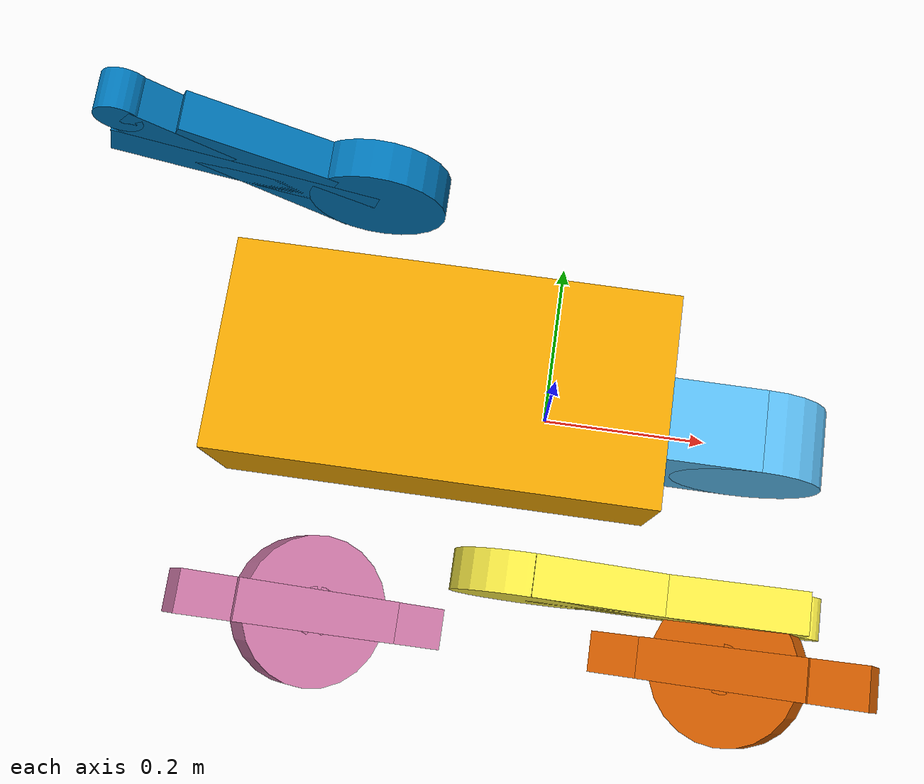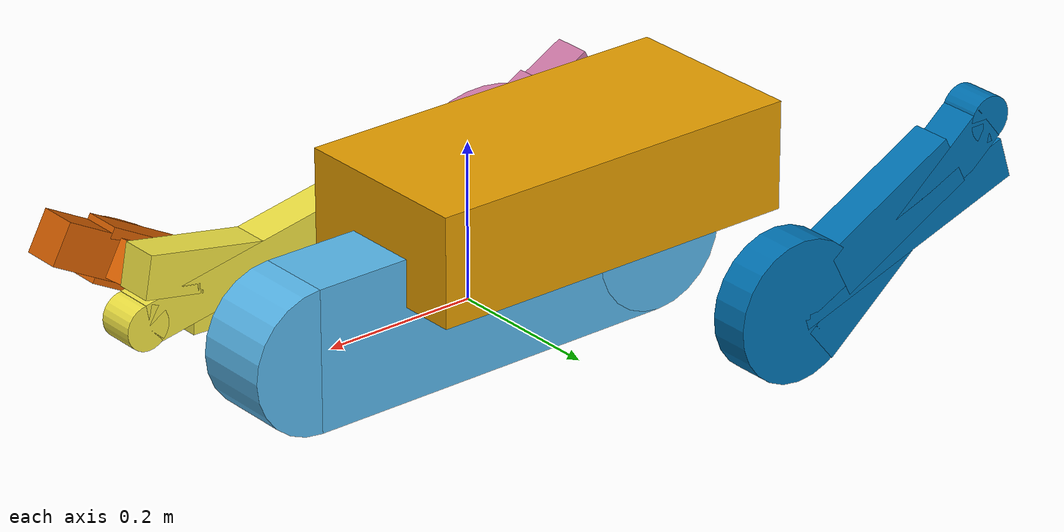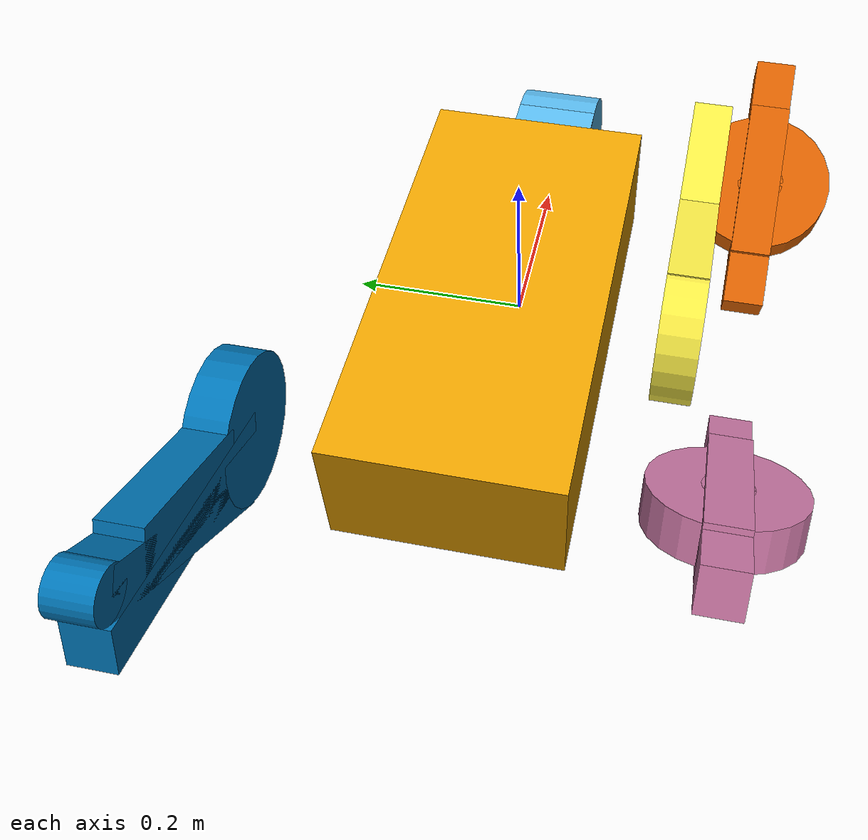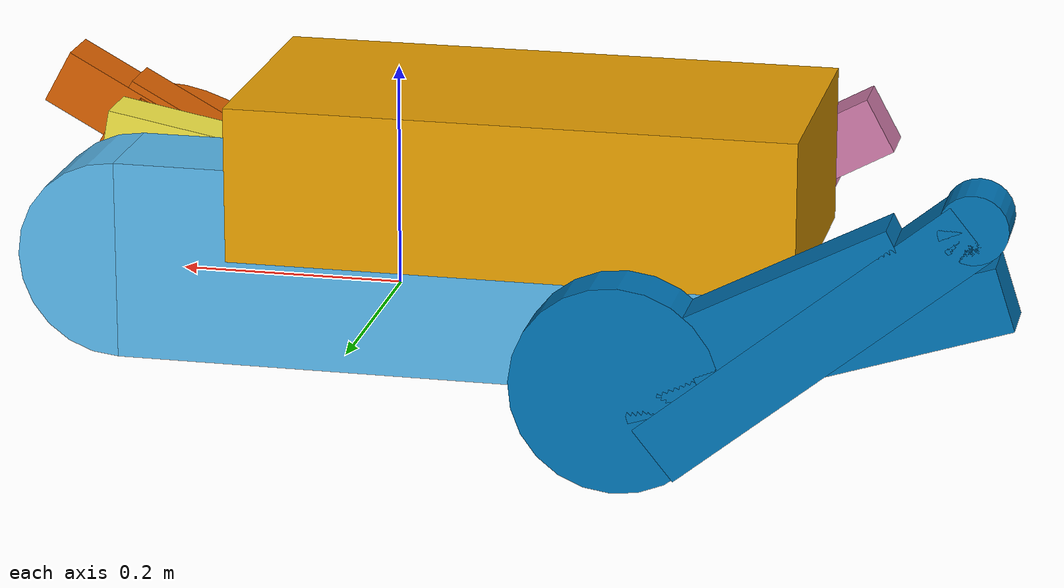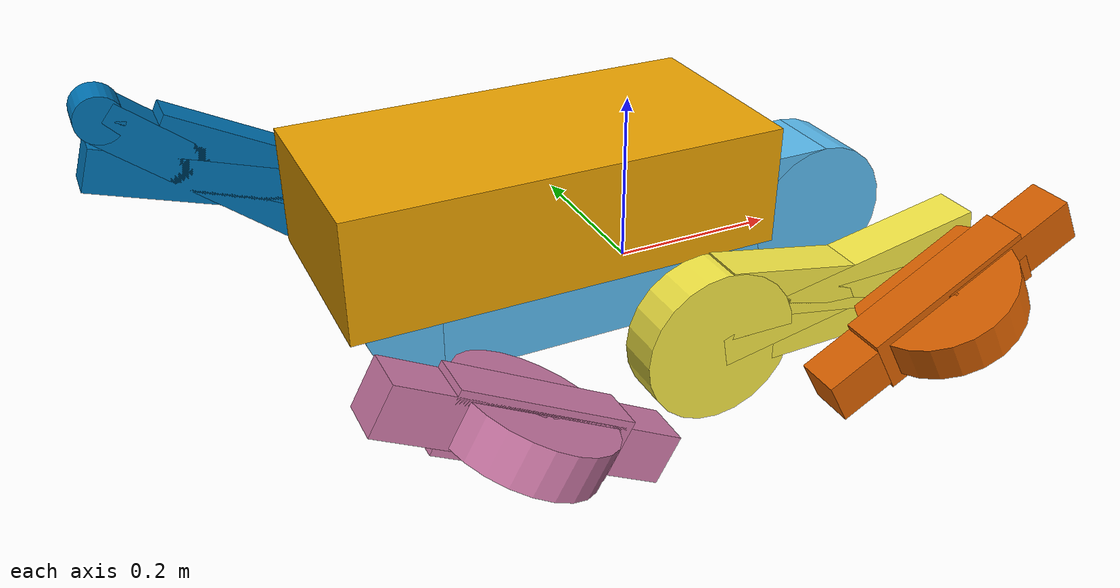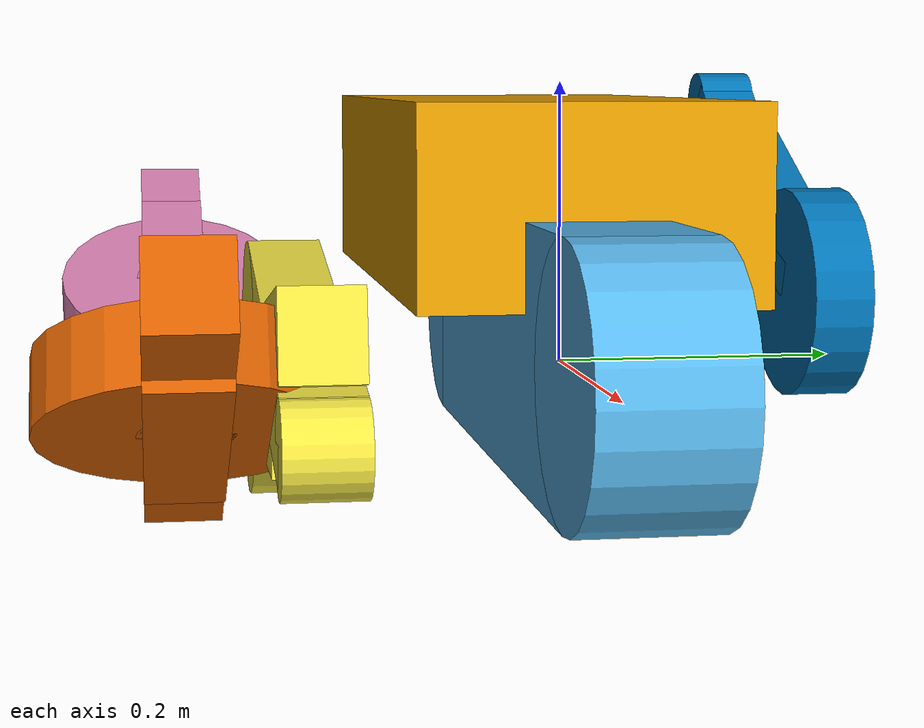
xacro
<?xml version="1.0" ?>
<robot xmlns:xacro="http://www.ros.org/wiki/xacro"  name="robot">

            <link name='base_link'>
                <origin xyz="0 0 0" rpy="0 -0 0"/>
                <collision name='base_link_collision'>
                    <origin xyz="-0.122 0 0.118" rpy="0 -0 0"/>
                    <geometry>
                        <box size="0.50017 0.24093 0.139"/>
                    </geometry>
                </collision>
                <visual name='base_link_visual'>
                    <origin xyz="-0.122 0 0.118" rpy="0 -0 0"/>
                    <geometry>
                        <box size="0.50017 0.24093 0.139"/>
                    </geometry>
                </visual>
                <self_collide>0</self_collide>
                <gravity>1</gravity>
                <kinematic>0</kinematic>
            </link>

            <link name='left_track'>
                <origin xyz="0 0.1985 0" rpy="0 -0 0"/>
                <collision name='left_track_collision'>
                    <origin xyz="0 0 0.01855" rpy="1.5708 -0 1.5708"/>
                    <geometry>
                        <box size="0.09728 0.18094 0.5"/>
                    </geometry>
                    <surface>
                        <friction>
                            <ode>
                                <mu>0.7</mu>
                                <mu2>150</mu2>
                                <fdir1>0 1 0</fdir1>
                            </ode>
                        </friction>
                    </surface>
                </collision>
                <collision name='left_track_collision_1'>
                    <origin xyz="0.25 0 0.01855" rpy="1.5708 -0 0"/>
                    <geometry>
                        <cylinder length="0.09728" radius="0.09047"/>
                    </geometry>
                    <surface>
                        <friction>
                            <ode>
                                <mu>0.7</mu>
                                <mu2>150</mu2>
                                <fdir1>0 1 0</fdir1>
                            </ode>
                        </friction>
                    </surface>
                </collision>
                <collision name='left_track_collision_2'>
                    <origin xyz="-0.25 0 0.01855" rpy="1.5708 -0 0"/>
                    <geometry>
                        <cylinder length="0.09728" radius="0.09047"/>
                    </geometry>
                    <surface>
                        <friction>
                            <ode>
                                <mu>0.7</mu>
                                <mu2>150</mu2>
                                <fdir1>0 1 0</fdir1>
                            </ode>
                        </friction>
                    </surface>
                </collision>
                <visual name='left_track_visual'>
                    <origin xyz="0 0 0.01855" rpy="1.5708 -0 1.5708"/>
                    <geometry>
                        <box size="0.09728 0.18094 0.5"/>
                    </geometry>
                </visual>
                <visual name='left_track_visual_1'>
                    <origin xyz="0.25 0 0.01855" rpy="1.5708 -0 0"/>
                    <geometry>
                        <cylinder length="0.09728" radius="0.09047"/>
                    </geometry>
                </visual>
                <visual name='left_track_visual_2'>
                    <origin xyz="-0.25 0 0.01855" rpy="1.5708 -0 0"/>
                    <geometry>
                         <cylinder length="0.09728" radius="0.09047"/>
                    </geometry>
                </visual>
                <gravity>1</gravity>
                <kinematic>0</kinematic>
            </link>
            <joint name='left_track_j' type='fixed'>
                <child link="left_track"/>
                <parent link="base_link"/>
            </joint>

            <!-- RIGHT TRACK-->

            <link name='right_track'>
                <origin xyz="0 -0.1985 0" rpy="0 -0 0"/>
                <collision name='right_track_collision'>
                    <origin xyz="0 0 0.01855" rpy="1.5708 -0 1.5708"/>
                    <geometry>
                        <box size="0.09728 0.18094 0.5"/>
                    </geometry>
                    <surface>
                        <friction>
                            <ode>
                                <mu>0.7</mu>
                                <mu2>150</mu2>
                                <fdir1>0 1 0</fdir1>
                            </ode>
                        </friction>
                    </surface>
                </collision>
                <collision name='right_track_collision_1'>
                    <origin xyz="0.25 0 0.01855" rpy="1.5708 -0 0"/>
                    <geometry>
                        <cylinder length="0.09728" radius="0.09047"/>
                    </geometry>
                    <surface>
                        <friction>
                            <ode>
                                <mu>0.7</mu>
                                <mu2>150</mu2>
                                <fdir1>0 1 0</fdir1>
                            </ode>
                        </friction>
                    </surface>
                </collision>
                <collision name='right_track_collision_2'>
                    <origin xyz="0.25 0 0.01855" rpy="1.5708 -0 0"/>
                    <geometry>
                        <cylinder length="0.09728" radius="0.09047"/>
                    </geometry>
                    <surface>
                        <friction>
                            <ode>
                                <mu>0.7</mu>
                                <mu2>150</mu2>
                                <fdir1>0 1 0</fdir1>
                            </ode>
                        </friction>
                    </surface>
                </collision>
                <visual name='right_track_visual'>
                    <origin xyz="0 0 0.01855" rpy="1.5708 -0 1.5708"/>
                    <geometry>
                        <box size="0.09728 0.18094 0.5"/>
                    </geometry>
                </visual>
                <visual name='right_track_visual_1'>
                    <origin xyz="0.25 0 0.01855" rpy="1.5708 -0 0"/>
                    <geometry>
                        <cylinder length="0.09728" radius="0.09047"/>
                    </geometry>
                </visual>
                <visual name='right_track_visual_2'>
                    <origin xyz="0.25 0 0.01855" rpy="1.5708 -0 0"/>
                    <geometry>
                        <cylinder length="0.09728" radius="0.09047"/>
                    </geometry>
                </visual>
                <gravity>1</gravity>
                <kinematic>0</kinematic>
            </link>
            <joint name='right_track_j' type='fixed'>
                <child link="right_track"/>
                <parent link="base_link"/>
            </joint>

            <!-- FRONT LEFT FLIPPER-->

            <link name='front_left_flipper'>
                <origin xyz="0.25 0.272 0.0195" rpy="0 -0.5 0"/>
                <collision name='front_left_flipper_collision_large_wheel_collision'>
                    <origin xyz="0 -0 0" rpy="1.5708 -0 0"/>
                    <geometry>
                        <cylinder length="0.04981" radius="0.089"/>
                    </geometry>
                    <surface>
                        <friction>
                            <ode>
                                <mu>0.7</mu>
                                <mu2>150</mu2>
                                <fdir1>0 1 0</fdir1>
                            </ode>
                        </friction>
                        <contact>
                            <ode/>
                        </contact>
                    </surface>
                    <max_contacts>20</max_contacts>
                </collision>
                <collision name='front_left_flipper_collision_small_wheel_collision_1'>
                    <origin xyz="0.33 -0 0" rpy="1.5708 -0 0"/>
                    <geometry>
                        <cylinder length="0.04981" radius="0.029"/>
                    </geometry>
                    <surface>
                        <friction>
                            <ode>
                                <mu>0.7</mu>
                                <mu2>150</mu2>
                                <fdir1>0 1 0</fdir1>
                            </ode>
                        </friction>
                        <contact>
                            <ode/>
                        </contact>
                    </surface>
                    <max_contacts>20</max_contacts>
                </collision>
                <collision name='front_left_flipper_collision_top_bar_collision_2'>
                    <origin xyz="0.165 -0 0.0325" rpy="0 0.184162 0"/>
                    <geometry>
                        <box size="0.33 0.04981 0.055"/>
                    </geometry>
                    <surface>
                        <friction>
                            <ode>
                                <mu>0.7</mu>
                                <mu2>150</mu2>
                                <fdir1>0 1 0</fdir1>
                            </ode>
                        </friction>
                        <contact>
                            <ode/>
                        </contact>
                    </surface>
                    <max_contacts>20</max_contacts>
                </collision>
                <collision name='front_left_flipper_collision_bottom_bar_collision_3'>
                    <origin xyz="0.165 -0 0.0325" rpy="0 -0.184162 0"/>
                    <geometry>
                        <box size="0.33 0.04981 0.055"/>
                    </geometry>
                    <surface>
                        <friction>
                            <ode>
                                <mu>0.7</mu>
                                <mu2>150</mu2>
                                <fdir1>0 1 0</fdir1>
                            </ode>
                        </friction>
                        <contact>
                            <ode/>
                        </contact>
                    </surface>
                    <max_contacts>20</max_contacts>
                </collision>
                <collision name='front_left_flipper_collision_middle_bar_collision_4'>
                    <origin xyz="0.166 -0 0.004" rpy="0 -0.02 0"/>
                    <geometry>
                        <box size="0.2 0.04981 0.07"/>
                    </geometry>
                    <surface>
                        <friction>
                            <ode>
                                <mu>0.7</mu>
                                <mu2>150</mu2>
                                <fdir1>0 1 0</fdir1>
                            </ode>
                        </friction>
                        <contact>
                            <ode/>
                        </contact>
                    </surface>
                    <max_contacts>20</max_contacts>
                </collision>
                <visual name='front_left_flipper_visual_large_wheel_visual'>
                    <origin xyz="0 -0 0" rpy="1.5708 -0 0"/>
                    <geometry>
                        <cylinder length="0.04981" radius="0.089"/>
                    </geometry>
                </visual>
                <visual name='front_left_flipper_visual_small_wheel_visual_1'>
                    <origin xyz="0.33 -0 0" rpy="1.5708 -0 0"/>
                    <geometry>
                        <cylinder length="0.04981" radius="0.029"/>
                    </geometry>
                </visual>
                <visual name='front_left_flipper_visual_top_bar_visual_2'>
                    <origin xyz="0.165 -0 0.0325" rpy="0 0.184162 0"/>
                    <geometry>
                        <box size="0.33 0.04981 0.055"/>
                    </geometry>
                </visual>
                <visual name='front_left_flipper_visual_bottom_bar_visual_3'>
                    <origin xyz="0.165 -0 0.0325" rpy="0 -0.184162 0"/>
                    <geometry>
                        <box size="0.33 0.04981 0.055"/>
                    </geometry>
                </visual>
                <visual name='front_left_flipper_visual_middle_bar_visual_4'>
                    <origin xyz="0.166 -0 0.004" rpy="0 -0.02 0"/>
                    <geometry>
                        <box size="0.2 0.04981 0.07"/>
                    </geometry>
                </visual>
                <gravity>1</gravity>
                <velocity_decay/>
                <self_collide>1</self_collide>
                <kinematic>0</kinematic>
            </link>
            <joint name='front_left_flipper_j' type='revolute'>
                <child link="front_left_flipper"/>
                <parent link="left_track"/>
                <limit effort="1000.0" lower="0.0" upper="0" velocity="0.5"/>
                 <origin xyz="0 -0.1985 0" rpy="0 -0 0"/>
                <axis xyz="0 1 0">
                    <dynamics spring_reference="0" spring_stiffness="0"/>
                </axis>
                <physics>
                    <ode implicit_spring_damper="1" cfm_damping="1">
                        <limit cfm="0" erp="0.2"/>
                    </ode>
                </physics>
            </joint>

            <!-- REAR LEFT FLIPPER-->

            <link name='rear_left_flipper'>
                <origin xyz="-0.25 0.272 0.0195" rpy="3.14159 -0.5 3.14159"/>
                <collision name='rear_left_flipper_collision_large_wheel_collision'>
                    <origin xyz="0 -0 0" rpy="1.5708 -0 0"/>
                    <geometry>
                        <cylinder length="0.04981" radius="0.089"/>
                    </geometry>
                    <surface>
                        <friction>
                            <ode>
                                <mu>0.7</mu>
                                <mu2>150</mu2>
                                <fdir1>0 1 0</fdir1>
                            </ode>
                        </friction>
                        <contact>
                            <ode/>
                        </contact>
                    </surface>
                    <max_contacts>20</max_contacts>
                </collision>
                <collision name='rear_left_flipper_collision_small_wheel_collision_1'>
                    <origin xyz="0.33 -0 0" rpy="1.5708 -0 0"/>
                    <geometry>
                        <cylinder length="0.04981" radius="0.029"/>
                    </geometry>
                    <surface>
                        <friction>
                            <ode>
                                <mu>0.7</mu>
                                <mu2>150</mu2>
                                <fdir1>0 1 0</fdir1>
                            </ode>
                        </friction>
                        <contact>
                            <ode/>
                        </contact>
                    </surface>
                    <max_contacts>20</max_contacts>
                </collision>
                <collision name='rear_left_flipper_collision_top_bar_collision_2'>
                    <origin xyz="0.165 -0 0.0325" rpy="0 0.184162 0"/>
                    <geometry>
                        <box size="0.33 0.04981 0.055"/>
                    </geometry>
                    <surface>
                        <friction>
                            <ode>
                                <mu>0.7</mu>
                                <mu2>150</mu2>
                                <fdir1>0 1 0</fdir1>
                            </ode>
                        </friction>
                        <contact>
                            <ode/>
                        </contact>
                    </surface>
                    <max_contacts>20</max_contacts>
                </collision>
                <collision name='rear_left_flipper_collision_bottom_bar_collision_3'>
                    <origin xyz="0.165 -0 0.0325" rpy="0 0.184162 0"/>
                    <geometry>
                        <box size="0.33 0.04981 0.055"/>
                    </geometry>
                    <surface>
                        <friction>
                            <ode>
                                <mu>0.7</mu>
                                <mu2>150</mu2>
                                <fdir1>0 1 0</fdir1>
                            </ode>
                        </friction>
                        <contact>
                            <ode/>
                        </contact>
                    </surface>
                    <max_contacts>20</max_contacts>
                </collision>
                <collision name='rear_left_flipper_collision_middle_bar_collision_4'>
                    <origin xyz="0.166 -0 0.004" rpy="0 -0.02 0"/>
                    <geometry>
                        <box size="0.2 0.04981 0.07"/>
                    </geometry>
                    <surface>
                        <friction>
                            <ode>
                                <mu>0.7</mu>
                                <mu2>150</mu2>
                                <fdir1>0 1 0</fdir1>
                            </ode>
                        </friction>
                        <contact>
                            <ode/>
                        </contact>
                    </surface>
                    <max_contacts>20</max_contacts>
                </collision>
                <visual name='rear_left_flipper_visual_large_wheel_visual'>
                    <origin xyz="0 -0 0" rpy="1.5708 -0 0"/>
                    <geometry>
                        <cylinder length="0.04981" radius="0.089"/>
                    </geometry>
                </visual>
                <visual name='rear_left_flipper_visual_small_wheel_visual_1'>
                    <origin xyz="0.33 -0 0" rpy="1.5708 -0 0"/>
                    <geometry>
                        <cylinder length="0.04981" radius="0.029"/>
                    </geometry>
                </visual>
                <visual name='rear_left_flipper_visual_top_bar_visual_2'>
                    <origin xyz="0.165 -0 0.0325" rpy="0 0.184162 0"/>
                    <geometry>
                        <box size="0.33 0.04981 0.055"/>
                    </geometry>
                </visual>
                <visual name='rear_left_flipper_visual_bottom_bar_visual_3'>
                    <origin xyz="0.165 -0 0.0325" rpy="0 -0.184162 0"/>
                    <geometry>
                         <box size="0.33 0.04981 0.055"/>
                    </geometry>
                </visual>
                <visual name='rear_left_flipper_visual_middle_bar_visual_4'>
                    <origin xyz="0.166 -0 0.004" rpy="0 -0.02 0"/>
                    <geometry>
                        <box size="0.2 0.04981 0.07"/>
                    </geometry>
                </visual>
                <gravity>1</gravity>
                <velocity_decay/>
                <self_collide>1</self_collide>
                <kinematic>0</kinematic>
            </link>
            <joint name='rear_left_flipper_j' type='revolute'>
                <child link="rear_left_flipper"/>
                <parent link="left_track"/>
                <origin xyz="-0.25 0.272 0.0195" rpy="3.14159 -0.5 3.14159"/>
                <limit effort="1000.0" lower="0.0" upper="0" velocity="0.5"/>
                <axis xyz = "0 1 0">
                    <dynamics>
                        <spring_reference>0</spring_reference>
                        <spring_stiffness>0</spring_stiffness>
                    </dynamics>
                </axis>
                <physics>
                    <ode>
                        <implicit_spring_damper>1</implicit_spring_damper>
                        <cfm_damping>1</cfm_damping>
                        <limit>
                            <cfm>0</cfm>
                            <erp>0.2</erp>
                        </limit>
                    </ode>
                </physics>
            </joint>

            <!-- FRONT RIGHT FLIPPER -->

            <link name='front_right_flipper'>
            <origin xyz="0.25 -0.272 0.0195" rpy="3.14159 0.5 3.14159"/>
                <collision name='front_right_flipper_collision_large_wheel_collision'>
                    <pose frame=''>0 0 0 1.5708 -0 0</pose>
                    <geometry>
                        <cylinder length="0.04981" radius="0.089"/>
                    </geometry>
                    <surface>
                        <friction>
                            <ode>
                                <mu>0.7</mu>
                                <mu2>150</mu2>
                                <fdir1>0 1 0</fdir1>
                            </ode>
                        </friction>
                        <contact>
                            <ode/>
                        </contact>
                    </surface>
                    <max_contacts>20</max_contacts>
                </collision>
                <collision name='front_right_flipper_collision_small_wheel_collision_1'>
                    <pose frame=''>-0.33 0 0 1.5708 -0 0</pose>
                    <geometry>
                        <cylinder length="0.04981" radius="0.029"/>
                    </geometry>
                    <surface>
                        <friction>
                            <ode>
                                <mu>0.7</mu>
                                <mu2>150</mu2>
                                <fdir1>0 1 0</fdir1>
                            </ode>
                        </friction>
                        <contact>
                            <ode/>
                        </contact>
                    </surface>
                    <max_contacts>20</max_contacts>
                </collision>
                <collision name='front_right_flipper_collision_top_bar_collision_2'>
                    <pose frame=''>-0.165 0 0.0325 0 0.184162 -3.14159</pose>
                    <geometry>
                        <box size="0.33 0.04981 0.055"/>
                    </geometry>
                    <surface>
                        <friction>
                            <ode>
                                <mu>0.7</mu>
                                <mu2>150</mu2>
                                <fdir1>0 1 0</fdir1>
                            </ode>
                        </friction>
                        <contact>
                            <ode/>
                        </contact>
                    </surface>
                    <max_contacts>20</max_contacts>
                </collision>
                <collision name='front_right_flipper_collision_bottom_bar_collision_3'>
                    <pose frame=''>-0.165 0 -0.0325 0 -0.184162 -3.14159</pose>
                    <geometry>
                        <box size="0.33 0.04981 0.055"/>
                    </geometry>
                    <surface>
                        <friction>
                            <ode>
                                <mu>0.7</mu>
                                <mu2>150</mu2>
                                <fdir1>0 1 0</fdir1>
                            </ode>
                        </friction>
                        <contact>
                            <ode/>
                        </contact>
                    </surface>
                    <max_contacts>20</max_contacts>
                </collision>
                <collision name='front_right_flipper_collision_middle_bar_collision_4'>
                    <pose frame=''>-0.166 0 0.004 -0 -0.02 -3.14159</pose>
                    <geometry>
                        <box size="0.2 0.04981 0.07"/>
                    </geometry>
                    <surface>
                        <friction>
                            <ode>
                                <mu>0.7</mu>
                                <mu2>150</mu2>
                                <fdir1>0 1 0</fdir1>
                            </ode>
                        </friction>
                        <contact>
                            <ode/>
                        </contact>
                    </surface>
                    <max_contacts>20</max_contacts>
                </collision>
                <visual name='front_right_flipper_visual_large_wheel_visual'>
                    <pose frame=''>0 0 0 1.5708 -0 0</pose>
                    <geometry>
                        <cylinder length="0.04981" radius="0.089"/>
                    </geometry>
                </visual>
                <visual name='front_right_flipper_visual_small_wheel_visual_1'>
                    <pose frame=''>-0.33 0 0 1.5708 -0 0</pose>
                    <geometry>
                        <cylinder length="0.04981" radius="0.029"/>
                    </geometry>
                </visual>
                <visual name='front_right_flipper_visual_top_bar_visual_2'>
                    <pose frame=''>-0.165 0 0.0325 0 0.184162 -3.14159</pose>
                    <geometry>
                       <box size="0.33 0.04981 0.055"/>
                    </geometry>
                </visual>
                <visual name='front_right_flipper_visual_bottom_bar_visual_3'>
                    <pose frame=''>-0.165 0 -0.0325 0 -0.184162 -3.14159</pose>
                    <geometry>
                        <box size="0.33 0.04981 0.055"/>
                    </geometry>
                </visual>
                <visual name='front_right_flipper_visual_middle_bar_visual_4'>
                    <pose frame=''>-0.166 0 0.004 -0 -0.02 -3.14159</pose>
                    <geometry>
                        <box size="0.2 0.04981 0.07"/>
                    </geometry>
                </visual>
                <gravity>1</gravity>
                <velocity_decay/>
                <self_collide>1</self_collide>
                <kinematic>0</kinematic>
            </link>
            <joint name='front_right_flipper_j' type='revolute'>
                <child link="front_right_flipper"/>
                <parent link="right_track"/>
                <limit effort="1000.0" lower="0.0" upper="0" velocity="0.5"/>
                <origin xyz="0.25 -0.272 0.0195" rpy="3.14159 0.5 3.14159"/>
                <axis xyz="0 1 0">
                    <dynamics>
                        <spring_reference>0</spring_reference>
                        <spring_stiffness>0</spring_stiffness>
                    </dynamics>
                </axis>
                <physics>
                    <ode>
                        <implicit_spring_damper>1</implicit_spring_damper>
                        <cfm_damping>1</cfm_damping>
                        <limit>
                            <cfm>0</cfm>
                            <erp>0.2</erp>
                        </limit>
                    </ode>
                </physics>
            </joint>

            <!--REAR_RIGHT_FLIPPER-->

            <link name='rear_right_flipper'>
                <origin xyz="-0.25 -0.272 0.0195" rpy="0 0.5 0"/>
                <collision name='rear_right_flipper_collision_large_wheel_collision'>
                    <pose frame=''>0 0 0 1.5708 -0 0</pose>
                    <geometry>
                        <cylinder length="0.04981" radius="0.089"/>
                    </geometry>
                    <surface>
                        <friction>
                            <ode>
                                <mu>0.7</mu>
                                <mu2>150</mu2>
                                <fdir1>0 1 0</fdir1>
                            </ode>
                        </friction>
                        <contact>
                            <ode/>
                        </contact>
                    </surface>
                    <max_contacts>20</max_contacts>
                </collision>
                <collision name='rear_right_flipper_collision_small_wheel_collision_1'>
                    <pose frame=''>-0.33 0 0 1.5708 -0 0</pose>
                    <geometry>
                        <cylinder length="0.04981" radius="0.029"/>
                    </geometry>
                    <surface>
                        <friction>
                            <ode>
                                <mu>0.7</mu>
                                <mu2>150</mu2>
                                <fdir1>0 1 0</fdir1>
                            </ode>
                        </friction>
                        <contact>
                            <ode/>
                        </contact>
                    </surface>
                    <max_contacts>20</max_contacts>
                </collision>
                <collision name='rear_right_flipper_collision_top_bar_collision_2'>
                    <pose frame=''>-0.165 0 0.0325 0 0.184162 -3.14159</pose>
                    <geometry>
                        <box size="0.33 0.04981 0.055"/>
                    </geometry>
                    <surface>
                        <friction>
                            <ode>
                                <mu>0.7</mu>
                                <mu2>150</mu2>
                                <fdir1>0 1 0</fdir1>
                            </ode>
                        </friction>
                        <contact>
                            <ode/>
                        </contact>
                    </surface>
                    <max_contacts>20</max_contacts>
                </collision>
                <collision name='rear_right_flipper_collision_bottom_bar_collision_3'>
                    <pose frame=''>-0.165 0 -0.0325 0 -0.184162 -3.14159</pose>
                    <geometry>
                        <box size="0.33 0.04981 0.055"/>
                    </geometry>
                    <surface>
                        <friction>
                            <ode>
                                <mu>0.7</mu>
                                <mu2>150</mu2>
                                <fdir1>0 1 0</fdir1>
                            </ode>
                        </friction>
                        <contact>
                            <ode/>
                        </contact>
                    </surface>
                    <max_contacts>20</max_contacts>
                </collision>
                <collision name='rear_right_flipper_collision_middle_bar_collision_4'>
                    <pose frame=''>-0.166 0 0.004 -0 -0.02 -3.14159</pose>
                    <geometry>
                        <box size="0.2 0.04981 0.07"/>
                    </geometry>
                    <surface>
                        <friction>
                            <ode>
                                <mu>0.7</mu>
                                <mu2>150</mu2>
                                <fdir1>0 1 0</fdir1>
                            </ode>
                        </friction>
                        <contact>
                            <ode/>
                        </contact>
                    </surface>
                    <max_contacts>20</max_contacts>
                </collision>

                <visual name='rear_right_flipper_visual_large_wheel_visual'>
                    <pose frame=''>0 0 0 1.5708 -0 0</pose>
                    <geometry>
                        <cylinder length="0.04981" radius="0.089"/>
                    </geometry>
                </visual>
                <visual name='rear_right_flipper_visual_small_wheel_visual_1'>
                    <pose frame=''>-0.33 0 0 1.5708 -0 0</pose>
                    <geometry>
                       <cylinder length="0.04981" radius="0.029"/>
                    </geometry>
                </visual>
                <visual name='rear_right_flipper_visual_top_bar_visual_2'>
                    <pose frame=''>-0.165 0 0.0325 0 0.184162 -3.14159</pose>
                    <geometry>
                        <box size="0.33 0.04981 0.055"/>
                    </geometry>
                </visual>
                <visual name='rear_right_flipper_visual_bottom_bar_visual_3'>
                    <pose frame=''>-0.165 0 -0.0325 0 -0.184162 -3.14159</pose>
                    <geometry>
                        <box size="0.33 0.04981 0.055"/>
                    </geometry>
                </visual>
                <visual name='rear_right_flipper_visual_middle_bar_visual_4'>
                    <pose frame=''>-0.166 0 0.004 -0 -0.02 -3.14159</pose>
                    <geometry>
                        <box size="0.2 0.04981 0.07"/>
                    </geometry>
                </visual>
                <gravity>1</gravity>
                <velocity_decay/>
                <self_collide>1</self_collide>
                <kinematic>0</kinematic>
            </link>
            <joint name='rear_right_flipper_j' type='revolute'>
                <child link="rear_right_flipper"/>
                <parent link="right_track"/>
                <limit effort="1000.0" lower="0.0" upper="0" velocity="0.5"/>
                <origin xyz="-0.25 -0.272 0.0195" rpy="0 0.5 0"/>
                <axis xyz="0 1 0">
                    <limit>
                        <lower>0</lower>
                        <upper>0</upper>
                    </limit>
                    <dynamics>
                        <spring_reference>0</spring_reference>
                        <spring_stiffness>0</spring_stiffness>
                    </dynamics>
                </axis>
                <physics>
                    <ode>
                        <implicit_spring_damper>1</implicit_spring_damper>
                        <cfm_damping>1</cfm_damping>
                        <limit>
                            <cfm>0</cfm>
                            <erp>0.2</erp>
                        </limit>
                    </ode>
                </physics>
            </joint>

    </robot>
